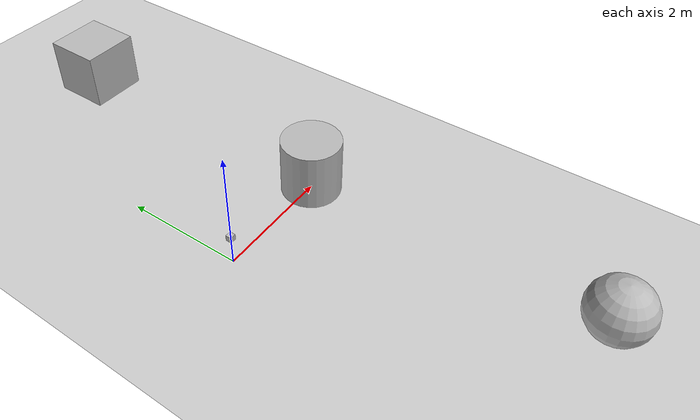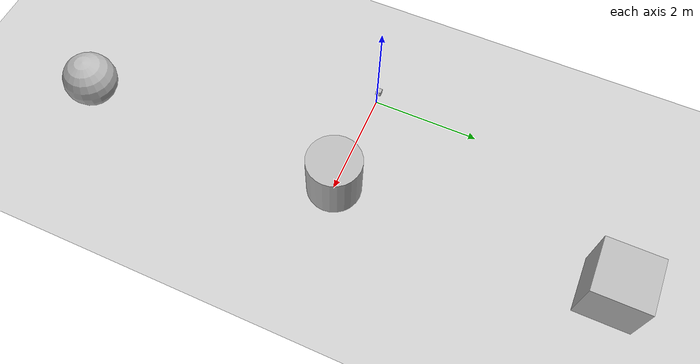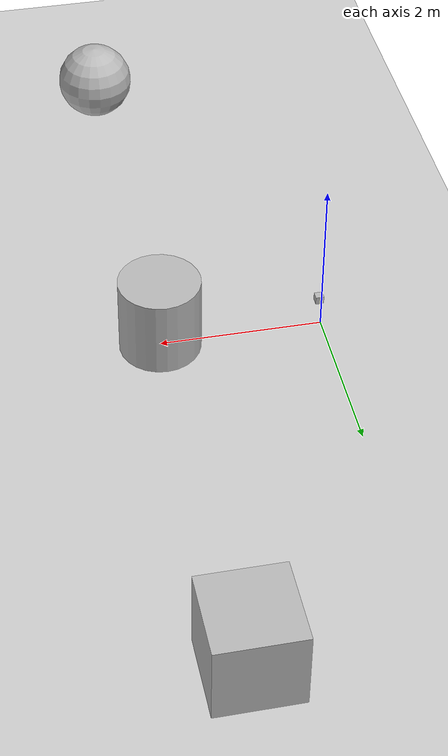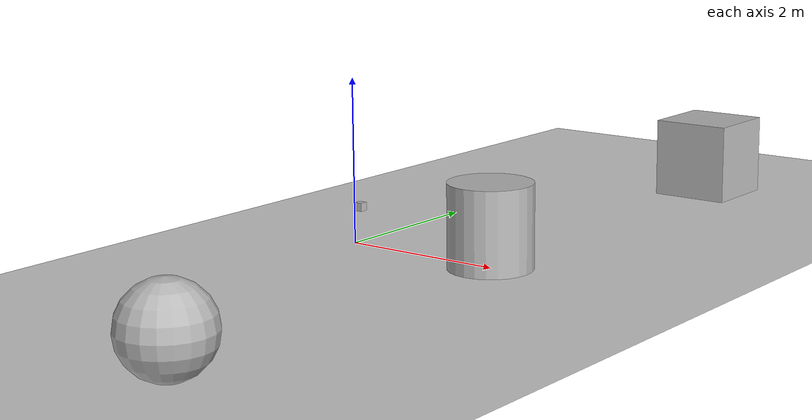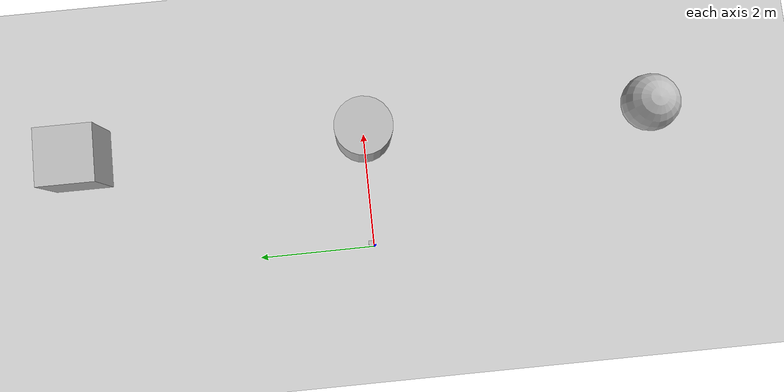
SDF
<?xml version="1.0" ?>
<sdf version="1.4">
  <world name="default">
    <include>
      <uri>model://ground_plane</uri>
    </include>
    <include>
      <uri>model://sun</uri>
    </include>

    <model name="cylinder">
      <pose>2 0 0.5 0 0 0</pose>
      <link name="link">
        <collision name="collision">
          <geometry>
            <cylinder>
              <radius>0.5</radius>
              <length>1.0</length>
            </cylinder>
          </geometry>
        </collision>
        <visual name="visual">
          <geometry>
            <cylinder>
              <radius>0.5</radius>
              <length>1.0</length>
            </cylinder>
          </geometry>
        </visual>
      </link>
    </model>

    <model name="box">
      <pose>2 5 0.5 0 0 0</pose>
      <link name="link">
        <collision name="collision">
          <geometry>
            <box>
              <size>1 1 1</size>
            </box>
          </geometry>
        </collision>
        <visual name="visual">
          <geometry>
            <box>
              <size>1 1 1</size>
            </box>
          </geometry>
          <material>
            <script>Gazebo/WoodPallet</script>
          </material>
        </visual>
      </link>
    </model>

    <model name="sphere">
      <pose>2 -5 0.5 0 0 0</pose>
      <link name="link">
        <collision name="collision">
          <geometry>
            <sphere>
              <radius>0.5</radius>
            </sphere>
          </geometry>
        </collision>
        <visual name="visual">
          <geometry>
            <sphere>
              <radius>0.5</radius>
            </sphere>
          </geometry>
          <material>
            <script>Gazebo/WoodPallet</script>
          </material>
        </visual>
      </link>
    </model>

    <model name="fisheye_camera">
      <pose>0 0 0.4 0 0 0</pose>
      <link name="link">
        <pose>0.05 0.05 0.05 0 0 0</pose>
        <inertial>
          <mass>0.1</mass>
        </inertial>
        <collision name="collision">
          <geometry>
            <box>
              <size>0.1 0.1 0.1</size>
            </box>
          </geometry>
        </collision>
        <visual name="visual">
          <geometry>
            <box>
              <size>0.1 0.1 0.1</size>
            </box>
          </geometry>
        </visual>
        <sensor name="camera" type="camera">
          <camera>
            <horizontal_fov>3.1415</horizontal_fov>
            <image>
              <width>640</width>
              <height>480</height>
            </image>
            <clip>
              <near>0.1</near>
              <far>100</far>
            </clip>
          </camera>
          <always_on>1</always_on>
          <update_rate>30</update_rate>
          <visualize>false</visualize>
        </sensor>
      </link>
    </model>

  </world>
</sdf>
